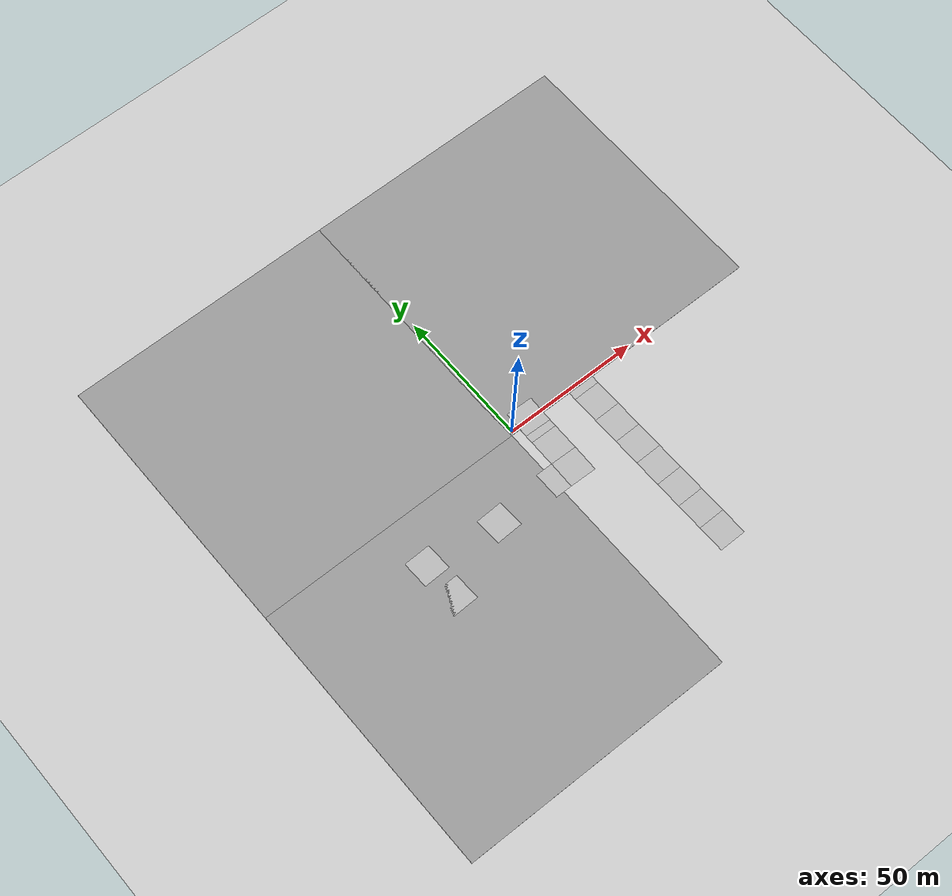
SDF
<sdf version="1.4">
 <world name="default">
  <light name="sun" type="directional">
   <pose>0 0 10 0 -0 0</pose>
   <diffuse>0.8 0.8 0.8 1</diffuse>
   <specular>0.2 0.2 0.2 1</specular>
   <attenuation>
    <range>1000</range>
    <constant>0.9</constant>
    <linear>0.01</linear>
    <quadratic>0.001</quadratic>
   </attenuation>
   <direction>-0.5 0.1 -0.9</direction>
  </light>
  <physics type="ode">
   <max_step_size>0.001</max_step_size>
   <real_time_factor>1</real_time_factor>
   <real_time_update_rate>1000</real_time_update_rate>
   <gravity>0 0 -9.8</gravity>
  </physics>
  <scene><ambient>0.4 0.4 0.4 1</ambient><background>0.7 0.7 0.7 1</background><shadows>1</shadows></scene>
  <model name="Road_straight">
   <static>1</static>
   <pose>29 -68 0 0 0 -1.56</pose>
   <link name="link">
    <visual name="visual">
     <pose>0 0 0.04 0 -0 0</pose>
     <geometry>
      <mesh><uri>model://Road_straight/models/Road 01.dae</uri><scale>0.39 0.39 1</scale></mesh>
     </geometry>
    </visual>
    <velocity_decay><linear>0</linear><angular>0</angular></velocity_decay>
   </link>
  </model>
  <model name="Road_straight_0">
   <static>1</static>
   <pose>28.906 -58.1093 0 0 0 -1.56</pose>
   <link name="link">
    <visual name="visual">
     <pose>0 0 0.04 0 -0 0</pose>
     <geometry>
      <mesh><uri>model://Road_straight/models/Road 01.dae</uri><scale>0.39 0.39 1</scale></mesh>
     </geometry>
    </visual>
    <velocity_decay><linear>0</linear><angular>0</angular></velocity_decay>
   </link>
  </model>
  <model name="Road_straight_2">
   <static>1</static>
   <pose>28.7979 -48.2289 0 0 0 -1.56</pose>
   <link name="link">
    <visual name="visual">
     <pose>0 0 0.04 0 -0 0</pose>
     <geometry>
      <mesh><uri>model://Road_straight/models/Road 01.dae</uri><scale>0.39 0.39 1</scale></mesh>
     </geometry>
    </visual>
    <velocity_decay><linear>0</linear><angular>0</angular></velocity_decay>
   </link>
  </model>
  <model name="Road_straight_3">
   <static>1</static>
   <pose>28.6795 -38.3333 0 0 0 -1.56</pose>
   <link name="link">
    <visual name="visual">
     <pose>0 0 0.04 0 -0 0</pose>
     <geometry>
      <mesh><uri>model://Road_straight/models/Road 01.dae</uri><scale>0.39 0.39 1</scale></mesh>
     </geometry>
    </visual>
    <velocity_decay><linear>0</linear><angular>0</angular></velocity_decay>
   </link>
  </model>
  <model name="Road_straight_4">
   <static>1</static>
   <pose>28.5728 -28.464 0 0 0 -1.56</pose>
   <link name="link">
    <visual name="visual">
     <pose>0 0 0.04 0 -0 0</pose>
     <geometry>
      <mesh><uri>model://Road_straight/models/Road 01.dae</uri><scale>0.39 0.39 1</scale></mesh>
     </geometry>
    </visual>
    <velocity_decay><linear>0</linear><angular>0</angular></velocity_decay>
   </link>
  </model>
  <model name="Road_straight_5">
   <static>1</static>
   <pose>28.4555 -18.5602 0 0 0 -1.56</pose>
   <link name="link">
    <visual name="visual">
     <pose>0 0 0.04 0 -0 0</pose>
     <geometry>
      <mesh><uri>model://Road_straight/models/Road 01.dae</uri><scale>0.39 0.39 1</scale></mesh>
     </geometry>
    </visual>
    <velocity_decay><linear>0</linear><angular>0</angular></velocity_decay>
   </link>
  </model>
  <model name="Road_straight_6">
   <static>1</static>
   <pose>28.3535 -8.68237 0 0 0 -1.56</pose>
   <link name="link">
    <visual name="visual">
     <pose>0 0 0.04 0 -0 0</pose>
     <geometry>
      <mesh><uri>model://Road_straight/models/Road 01.dae</uri><scale>0.39 0.39 1</scale></mesh>
     </geometry>
    </visual>
    <velocity_decay><linear>0</linear><angular>0</angular></velocity_decay>
   </link>
  </model>
  <model name="Road_straight_7">
   <static>1</static>
   <pose>28.2643 1.1937 0 0 0 -1.56</pose>
   <link name="link">
    <visual name="visual">
     <pose>0 0 0.04 0 -0 0</pose>
     <geometry>
      <mesh><uri>model://Road_straight/models/Road 01.dae</uri><scale>0.39 0.39 1</scale></mesh>
     </geometry>
    </visual>
    <velocity_decay><linear>0</linear><angular>0</angular></velocity_decay>
   </link>
  </model>
  <model name="Road_straight_8">
   <static>1</static>
   <pose>28.1633 11.0582 0 0 0 -1.56</pose>
   <link name="link">
    <visual name="visual">
     <pose>0 0 0.04 0 -0 0</pose>
     <geometry>
      <mesh><uri>model://Road_straight/models/Road 01.dae</uri><scale>0.39 0.39 1</scale></mesh>
     </geometry>
    </visual>
    <velocity_decay><linear>0</linear><angular>0</angular></velocity_decay>
   </link>
  </model>
  <model name="Road_curve">
   <static>1</static>
   <pose>23.7554 26.3501 -0.33 0 0 -1.56</pose>
   <link name="link">
    <visual name="visual">
     <pose>0 0 -7.5 0 -0 0</pose>
     <geometry><mesh><uri>model://Road_curve/models/Road 06.dae</uri><scale>0.39 0.39 1</scale></mesh></geometry>
    </visual>
    <velocity_decay><linear>0</linear><angular>0</angular></velocity_decay>
   </link>
  </model>
  <model name="Road_hard_curve_0">
   <static>1</static>
   <pose>8.68413 38.9529 0 0 -0 0</pose>
   <link name="link">
    <visual name="visual">
     <pose>0 0 0.04 0 -0 0</pose>
     <geometry>
      <mesh><uri>model://Road_hard_curve/models/Road 09.dae</uri><scale>0.39 0.39 1</scale></mesh>
     </geometry>
    </visual>
    <velocity_decay><linear>0</linear><angular>0</angular></velocity_decay>
   </link>
  </model>
  <model name="Road_hard_curve_1">
   <static>1</static>
   <pose>17.3648 41.3676 0 0 0 -3.12</pose>
   <link name="link">
    <visual name="visual">
     <pose>0 0 0.04 0 -0 0</pose>
     <geometry>
      <mesh><uri>model://Road_hard_curve/models/Road 09.dae</uri><scale>0.39 0.39 1</scale></mesh>
     </geometry>
    </visual>
    <velocity_decay><linear>0</linear><angular>0</angular></velocity_decay>
   </link>
  </model>
  <model name="Road_straight_10">
   <static>1</static>
   <pose>17.7356 50.2512 0 0 0 -1.56</pose>
   <link name="link">
    <visual name="visual">
     <pose>0 0 0.04 0 -0 0</pose>
     <geometry>
      <mesh><uri>model://Road_straight/models/Road 01.dae</uri><scale>0.39 0.39 1</scale></mesh>
     </geometry>
    </visual>
    <velocity_decay><linear>0</linear><angular>0</angular></velocity_decay>
   </link>
  </model>
  <model name="Road_hard_curve_2">
   <static>1</static>
   <pose>16.4941 59.3621 0 0 0 -1.56</pose>
   <link name="link">
    <visual name="visual">
     <pose>0 0 0.04 0 -0 0</pose>
     <geometry>
      <mesh><uri>model://Road_hard_curve/models/Road 09.dae</uri><scale>0.39 0.39 1</scale></mesh>
     </geometry>
    </visual>
    <velocity_decay><linear>0</linear><angular>0</angular></velocity_decay>
   </link>
  </model>
  <model name="Road_straight_11">
   <static>1</static>
   <pose>7.63705 59.8246 0 0 -0 0</pose>
   <link name="link">
    <visual name="visual">
     <pose>0 0 0.04 0 -0 0</pose>
     <geometry>
      <mesh><uri>model://Road_straight/models/Road 01.dae</uri><scale>0.39 0.39 1</scale></mesh>
     </geometry>
    </visual>
    <velocity_decay><linear>0</linear><angular>0</angular></velocity_decay>
   </link>
  </model>
  <model name="Road_straight_12">
   <static>1</static>
   <pose>-2.22028 59.8162 0 0 -0 0</pose>
   <link name="link">
    <visual name="visual">
     <pose>0 0 0.04 0 -0 0</pose>
     <geometry>
      <mesh><uri>model://Road_straight/models/Road 01.dae</uri><scale>0.39 0.39 1</scale></mesh>
     </geometry>
    </visual>
    <velocity_decay><linear>0</linear><angular>0</angular></velocity_decay>
   </link>
  </model>
  <model name="Road_hard_curve_3">
   <static>1</static>
   <pose>-11.394 58.6775 0 0 -0 0</pose>
   <link name="link">
    <visual name="visual">
     <pose>0 0 0.04 0 -0 0</pose>
     <geometry>
      <mesh><uri>model://Road_hard_curve/models/Road 09.dae</uri><scale>0.39 0.39 1</scale></mesh>
     </geometry>
    </visual>
    <velocity_decay><linear>0</linear><angular>0</angular></velocity_decay>
   </link>
  </model>
  <model name="Road_straight_13">
   <static>1</static>
   <pose>-11.9156 50.1815 0 0 0 -1.56</pose>
   <link name="link">
    <visual name="visual">
     <pose>0 0 0.04 0 -0 0</pose>
     <geometry>
      <mesh><uri>model://Road_straight/models/Road 01.dae</uri><scale>0.39 0.39 1</scale></mesh>
     </geometry>
    </visual>
    <velocity_decay><linear>0</linear><angular>0</angular></velocity_decay>
   </link>
  </model>
  <model name="Road_straight_14">
   <static>1</static>
   <pose>-11.8106 40.3056 0 0 0 -1.56</pose>
   <link name="link">
    <visual name="visual">
     <pose>0 0 0.04 0 -0 0</pose>
     <geometry>
      <mesh><uri>model://Road_straight/models/Road 01.dae</uri><scale>0.39 0.39 1</scale></mesh>
     </geometry>
    </visual>
    <velocity_decay><linear>0</linear><angular>0</angular></velocity_decay>
   </link>
  </model>
  <model name="Road_straight_15">
   <static>1</static>
   <pose>-11.7124 30.4369 0 0 0 -1.56</pose>
   <link name="link">
    <visual name="visual">
     <pose>0 0 0.04 0 -0 0</pose>
     <geometry>
      <mesh><uri>model://Road_straight/models/Road 01.dae</uri><scale>0.39 0.39 1</scale></mesh>
     </geometry>
    </visual>
    <velocity_decay><linear>0</linear><angular>0</angular></velocity_decay>
   </link>
  </model>
  <model name="Road_cross">
   <static>1</static>
   <pose>-11.5676 10.622 0 0 -0 0</pose>
   <link name="link">
    <visual name="visual">
     <pose>0 0 0.04 0 -0 0</pose>
     <geometry><mesh><uri>model://Road_cross/models/Road 08.dae</uri><scale>0.39 0.39 1</scale></mesh></geometry>
    </visual>
    <velocity_decay><linear>0</linear><angular>0</angular></velocity_decay>
   </link>
  </model>
  <model name="Road_hard_curve_4">
   <static>1</static>
   <pose>6.58043 9.94202 0 0 0 -1.6</pose>
   <link name="link">
    <visual name="visual">
     <pose>0 0 0.04 0 -0 0</pose>
     <geometry>
      <mesh><uri>model://Road_hard_curve/models/Road 09.dae</uri><scale>0.39 0.39 1</scale></mesh>
     </geometry>
    </visual>
    <velocity_decay><linear>0</linear><angular>0</angular></velocity_decay>
   </link>
  </model>
  <model name="Road_straight_16">
   <static>1</static>
   <pose>-11.6116 -9.01044 0 0 0 -1.56</pose>
   <link name="link">
    <visual name="visual">
     <pose>0 0 0.04 0 -0 0</pose>
     <geometry>
      <mesh><uri>model://Road_straight/models/Road 01.dae</uri><scale>0.39 0.39 1</scale></mesh>
     </geometry>
    </visual>
    <velocity_decay><linear>0</linear><angular>0</angular></velocity_decay>
   </link>
  </model>
  <model name="Road_hard_curve_6">
   <static>1</static>
   <pose>-7.90177 -17.145 -0.01 0 0 -1.55682</pose>
   <link name="link">
    <visual name="visual">
     <pose>0 0 0.04 0 -0 0</pose>
     <geometry>
      <mesh><uri>model://Road_hard_curve/models/Road 09.dae</uri><scale>0.39 0.39 1</scale></mesh>
     </geometry>
    </visual>
    <velocity_decay><linear>0</linear><angular>0</angular></velocity_decay>
   </link>
  </model>
  <model name="Road_hard_curve_7">
   <static>1</static>
   <pose>-15.9331 -17.9911 -0.01 0 -0 0.04</pose>
   <link name="link">
    <visual name="visual">
     <pose>0 0 0.04 0 -0 0</pose>
     <geometry>
      <mesh><uri>model://Road_hard_curve/models/Road 09.dae</uri><scale>0.39 0.39 1</scale></mesh>
     </geometry>
    </visual>
    <velocity_decay><linear>0</linear><angular>0</angular></velocity_decay>
   </link>
  </model>
  <model name="Road_hard_curve_8">
   <static>1</static>
   <pose>-15.0163 -26.0756 0 0 -0 1.60319</pose>
   <link name="link">
    <visual name="visual">
     <pose>0 0 0.04 0 -0 0</pose>
     <geometry>
      <mesh><uri>model://Road_hard_curve/models/Road 09.dae</uri><scale>0.39 0.39 1</scale></mesh>
     </geometry>
    </visual>
    <velocity_decay><linear>0</linear><angular>0</angular></velocity_decay>
   </link>
  </model>
  <model name="Road_hard_curve_9">
   <static>1</static>
   <pose>-7.1414 -25.2362 0 0 0 -3.12318</pose>
   <link name="link">
    <visual name="visual">
     <pose>0 0 0.04 0 -0 0</pose>
     <geometry>
      <mesh><uri>model://Road_hard_curve/models/Road 09.dae</uri><scale>0.39 0.39 1</scale></mesh>
     </geometry>
    </visual>
    <velocity_decay><linear>0</linear><angular>0</angular></velocity_decay>
   </link>
  </model>
  <model name="Road_curve_1">
   <static>1</static>
   <pose>-46.9437 6.31014 0 0 -0 0</pose>
   <link name="link">
    <visual name="visual">
     <pose>0 0 -7.83 0 -0 0</pose>
     <geometry><mesh><uri>model://Road_curve/models/Road 06.dae</uri><scale>0.39 0.39 1</scale></mesh></geometry>
    </visual>
    <velocity_decay><linear>0</linear><angular>0</angular></velocity_decay>
   </link>
  </model>
  <model name="Road_straight_17">
   <static>1</static>
   <pose>-51.2073 -9.01659 -0.01 0 0 -1.56</pose>
   <link name="link">
    <visual name="visual">
     <pose>0 0 0.04 0 -0 0</pose>
     <geometry>
      <mesh><uri>model://Road_straight/models/Road 01.dae</uri><scale>0.39 0.39 1</scale></mesh>
     </geometry>
    </visual>
    <velocity_decay><linear>0</linear><angular>0</angular></velocity_decay>
   </link>
  </model>
  <model name="Road_straight_18">
   <static>1</static>
   <pose>-50.9651 -19.1524 0.02 0 -0 1.6</pose>
   <link name="link">
    <visual name="visual">
     <pose>0 0 0.04 0 -0 0</pose>
     <geometry>
      <mesh><uri>model://Road_straight/models/Road 01.dae</uri><scale>0.39 0.39 1</scale></mesh>
     </geometry>
    </visual>
    <velocity_decay><linear>0</linear><angular>0</angular></velocity_decay>
   </link>
  </model>
  <model name="Road_straight_19">
   <static>1</static>
   <pose>-24.1242 -21.9851 0.03 0 -0 0.04</pose>
   <link name="link">
    <visual name="visual">
     <pose>0 0 0.04 0 -0 0</pose>
     <geometry>
      <mesh><uri>model://Road_straight/models/Road 01.dae</uri><scale>0.39 0.39 1</scale></mesh>
     </geometry>
    </visual>
    <velocity_decay><linear>0</linear><angular>0</angular></velocity_decay>
   </link>
  </model>
  <model name="Road_hard_curve_11">
   <static>1</static>
   <pose>-32.5076 -23.4149 0 0 -0 0.04</pose>
   <link name="link">
    <visual name="visual">
     <pose>0 0 0.04 0 -0 0</pose>
     <geometry>
      <mesh><uri>model://Road_hard_curve/models/Road 09.dae</uri><scale>0.39 0.39 1</scale></mesh>
     </geometry>
    </visual>
    <velocity_decay><linear>0</linear><angular>0</angular></velocity_decay>
   </link>
  </model>
  <model name="Road_hard_curve_12">
   <static>1</static>
   <pose>9.45069 30.9354 0 0 -0 1.60319</pose>
   <link name="link">
    <visual name="visual">
     <pose>0 0 0.04 0 -0 0</pose>
     <geometry>
      <mesh><uri>model://Road_hard_curve/models/Road 09.dae</uri><scale>0.39 0.39 1</scale></mesh>
     </geometry>
    </visual>
    <velocity_decay><linear>0</linear><angular>0</angular></velocity_decay>
   </link>
  </model>
  <model name="Road_straight_20">
   <static>1</static>
   <pose>-31.5941 10.5278 0 0 -0 0</pose>
   <link name="link">
    <visual name="visual">
     <pose>0 0 0.04 0 -0 0</pose>
     <geometry>
      <mesh><uri>model://Road_straight/models/Road 01.dae</uri><scale>0.39 0.39 1</scale></mesh>
     </geometry>
    </visual>
    <velocity_decay><linear>0</linear><angular>0</angular></velocity_decay>
   </link>
  </model>
  <model name="Road_straight_21">
   <static>1</static>
   <pose>-50.6884 -28.8741 0 0 -0 1.6</pose>
   <link name="link">
    <visual name="visual">
     <pose>0 0 0.04 0 -0 0</pose>
     <geometry>
      <mesh><uri>model://Road_straight/models/Road 01.dae</uri><scale>0.39 0.39 1</scale></mesh>
     </geometry>
    </visual>
    <velocity_decay><linear>0</linear><angular>0</angular></velocity_decay>
   </link>
  </model>
  <model name="Road_curve_3">
   <static>1</static>
   <pose>-36.9181 -37.6027 0 0 0 -3.11681</pose>
   <link name="link">
    <visual name="visual">
     <pose>0 0 -7.83 0 -0 0</pose>
     <geometry><mesh><uri>model://Road_curve/models/Road 06.dae</uri><scale>0.39 0.39 1</scale></mesh></geometry>
    </visual>
    <velocity_decay><linear>0</linear><angular>0</angular></velocity_decay>
   </link>
  </model>
  <model name="Road_hard_curve_13">
   <static>1</static>
   <pose>-49.3377 -41.4267 0 0 -0 1.56319</pose>
   <link name="link">
    <visual name="visual">
     <pose>0 0 0.04 0 -0 0</pose>
     <geometry>
      <mesh><uri>model://Road_hard_curve/models/Road 09.dae</uri><scale>0.39 0.39 1</scale></mesh>
     </geometry>
    </visual>
    <velocity_decay><linear>0</linear><angular>0</angular></velocity_decay>
   </link>
  </model>
  <model name="Road_straight_22">
   <static>1</static>
   <pose>-50.5904 -32.5253 0.01 0 -0 1.6</pose>
   <link name="link">
    <visual name="visual">
     <pose>0 0 0.04 0 -0 0</pose>
     <geometry>
      <mesh><uri>model://Road_straight/models/Road 01.dae</uri><scale>0.39 0.39 1</scale></mesh>
     </geometry>
    </visual>
    <velocity_decay><linear>0</linear><angular>0</angular></velocity_decay>
   </link>
  </model>
  <model name="Road_straight_23">
   <static>1</static>
   <pose>7.45046 0.946529 0.02 0 0 -1.6</pose>
   <link name="link">
    <visual name="visual">
     <pose>0 0 0.04 0 -0 0</pose>
     <geometry>
      <mesh><uri>model://Road_straight/models/Road 01.dae</uri><scale>0.39 0.39 1</scale></mesh>
     </geometry>
    </visual>
    <velocity_decay><linear>0</linear><angular>0</angular></velocity_decay>
   </link>
  </model>
  <model name="Road_straight_24">
   <static>1</static>
   <pose>7.35242 -2.3257 0 0 -0 1.56319</pose>
   <link name="link">
    <visual name="visual">
     <pose>0 0 0.04 0 -0 0</pose>
     <geometry>
      <mesh><uri>model://Road_straight/models/Road 01.dae</uri><scale>0.39 0.39 1</scale></mesh>
     </geometry>
    </visual>
    <velocity_decay><linear>0</linear><angular>0</angular></velocity_decay>
   </link>
  </model>
  <model name="Road_straight_26">
   <static>1</static>
   <pose>0.719651 -21.7013 0.01 0 -0 0</pose>
   <link name="link">
    <visual name="visual">
     <pose>0 0 0.04 0 -0 0</pose>
     <geometry>
      <mesh><uri>model://Road_straight/models/Road 01.dae</uri><scale>0.39 0.39 1</scale></mesh>
     </geometry>
    </visual>
    <velocity_decay><linear>0</linear><angular>0</angular></velocity_decay>
   </link>
  </model>
  <model name="Road_hard_curve_14">
   <static>1</static>
   <pose>6.60798 -20.6136 0.03 0 -0 3.12</pose>
   <link name="link">
    <visual name="visual">
     <pose>0 0 0.04 0 -0 0</pose>
     <geometry>
      <mesh><uri>model://Road_hard_curve/models/Road 09.dae</uri><scale>0.39 0.39 1</scale></mesh>
     </geometry>
    </visual>
    <velocity_decay><linear>0</linear><angular>0</angular></velocity_decay>
   </link>
  </model>
  <model name="Road_straight_27">
   <static>1</static>
   <pose>7.27004 -12.1899 0.02 0 -0 1.56</pose>
   <link name="link">
    <visual name="visual">
     <pose>0 0 0.04 0 -0 0</pose>
     <geometry>
      <mesh><uri>model://Road_straight/models/Road 01.dae</uri><scale>0.39 0.39 1</scale></mesh>
     </geometry>
    </visual>
    <velocity_decay><linear>0</linear><angular>0</angular></velocity_decay>
   </link>
  </model>
  <model name="ground_plane">
   <static>1</static>
   <link name="link">
    <collision name="collision">
     <geometry><plane><normal>0 0 1</normal><size>100 100</size></plane></geometry>
     <surface><friction><ode><mu>100</mu><mu2>50</mu2></ode></friction></surface>
    </collision>
    <visual name="visual">
     <cast_shadows>0</cast_shadows>
     <geometry><plane><normal>0 0 1</normal><size>100 100</size></plane></geometry>
     <material>
      <script><uri>file://media/materials/scripts/gazebo.material</uri><name>Gazebo/Grey</name></script>
     </material>
    </visual>
    <velocity_decay><linear>0</linear><angular>0</angular></velocity_decay>
   </link>
   <pose>48.4659 -51 0 0 -0 0</pose>
  </model>
  <model name="ground_plane_0">
   <static>1</static>
   <link name="link">
    <collision name="collision">
     <geometry><plane><normal>0 0 1</normal><size>100 100</size></plane></geometry>
     <surface><friction><ode><mu>100</mu><mu2>50</mu2></ode></friction></surface>
    </collision>
    <visual name="visual">
     <cast_shadows>0</cast_shadows>
     <geometry><plane><normal>0 0 1</normal><size>100 100</size></plane></geometry>
     <material>
      <script><uri>file://media/materials/scripts/gazebo.material</uri><name>Gazebo/Grey</name></script>
     </material>
    </visual>
    <velocity_decay><linear>0</linear><angular>0</angular></velocity_decay>
   </link>
   <pose>-51 -51 0 0 -0 0</pose>
  </model>
  <model name="ground_plane_1">
   <static>1</static>
   <link name="link">
    <collision name="collision">
     <geometry><plane><normal>0 0 1</normal><size>100 100</size></plane></geometry>
     <surface><friction><ode><mu>100</mu><mu2>50</mu2></ode></friction></surface>
    </collision>
    <visual name="visual">
     <cast_shadows>0</cast_shadows>
     <geometry><plane><normal>0 0 1</normal><size>100 100</size></plane></geometry>
     <material>
      <script><uri>file://media/materials/scripts/gazebo.material</uri><name>Gazebo/Grey</name></script>
     </material>
    </visual>
    <velocity_decay><linear>0</linear><angular>0</angular></velocity_decay>
   </link>
   <pose>-51 49 0 0 -0 0</pose>
  </model>
  <model name="ground_plane_2">
   <static>1</static>
   <link name="link">
    <collision name="collision">
     <geometry><plane><normal>0 0 1</normal><size>100 100</size></plane></geometry>
     <surface><friction><ode><mu>100</mu><mu2>50</mu2></ode></friction></surface>
    </collision>
    <visual name="visual">
     <cast_shadows>0</cast_shadows>
     <geometry><plane><normal>0 0 1</normal><size>100 100</size></plane></geometry>
     <material>
      <script><uri>file://media/materials/scripts/gazebo.material</uri><name>Gazebo/Grey</name></script>
     </material>
    </visual>
    <velocity_decay><linear>0</linear><angular>0</angular></velocity_decay>
   </link>
   <pose>48.4491 49 0 0 -0 0</pose>
  </model>
 </world>
</sdf>
